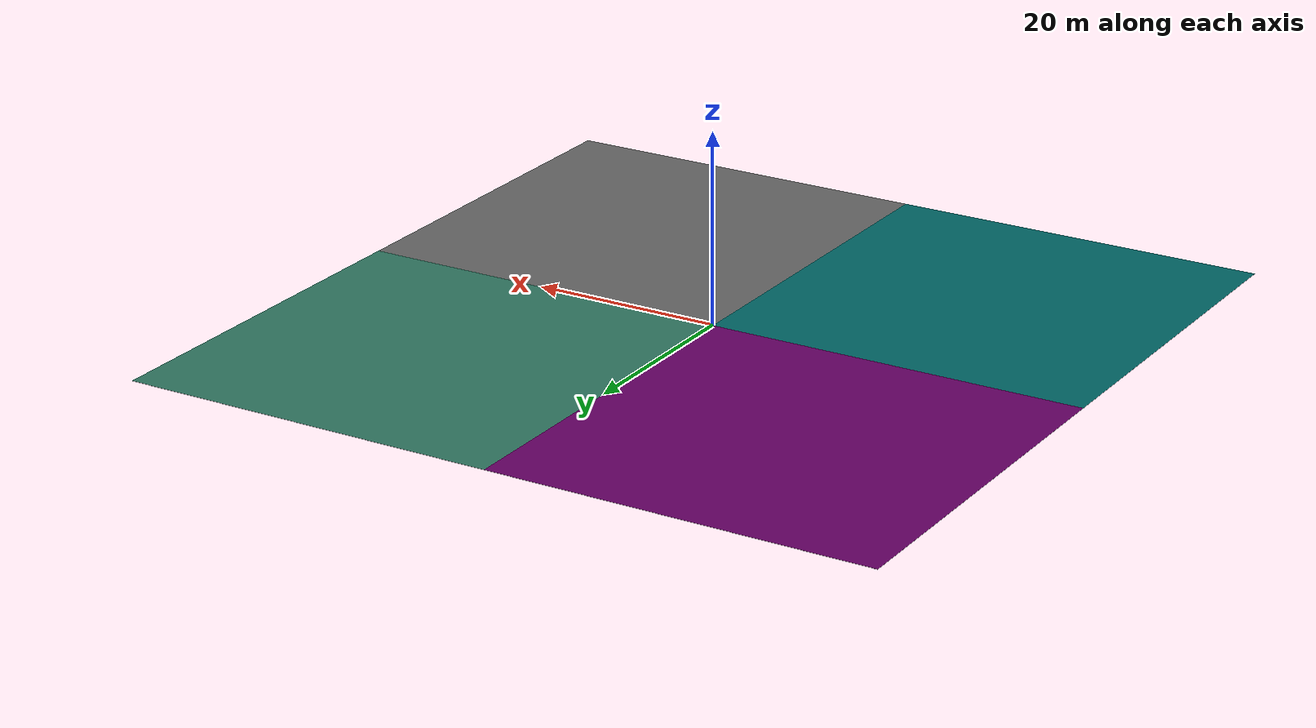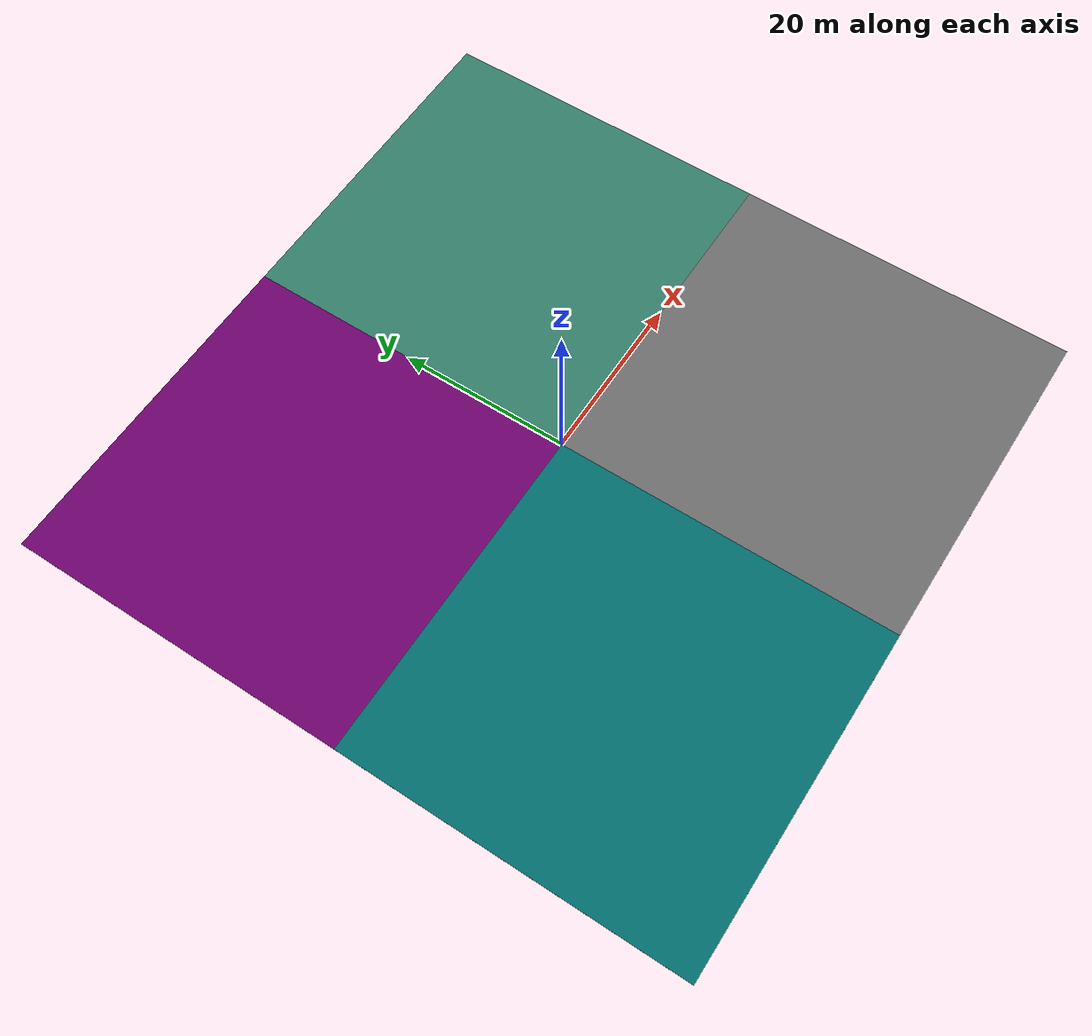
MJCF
<mujoco model="friction_floor_1">
  <compiler angle="radian" />
  <asset>
    <texture name='a' builtin="gradient" height="100" rgb1="1 1 1" rgb2="0 0 0" type="skybox" width="100"/>
    <texture name="texplane0" type="2d" builtin="checker" rgb1="0.14 0.83 0.43" rgb2="0.23 0.09 0.33" width="100" height="100" mark="cross" markrgb=".8 .8 .8"/>
    <texture name="texplane1" type="2d" builtin="checker" rgb1="0 0 0" rgb2="0.8 0.8 0.8" width="100" height="100" mark="cross" markrgb=".8 .8 .8"/>
    <texture name="texplane2" type="2d" builtin="checker" rgb1="0 0 0" rgb2="0.0 0.8 0.8" width="100" height="100" mark="cross" markrgb=".8 .8 .8"/>
    <texture name="texplane3" type="2d" builtin="checker" rgb1="0 0 0" rgb2="0.8 0.0 0.8" width="100" height="100" mark="cross" markrgb=".8 .8 .8"/>
    <material name="matplane0" reflectance="0.2" texture="texplane0" texrepeat="1 1" texuniform="true"/>
    <material name="matplane1" reflectance="0.2" texture="texplane1" texrepeat="1 1" texuniform="true"/>
    <material name="matplane2" reflectance="0.2" texture="texplane2" texrepeat="1 1" texuniform="true"/>
    <material name="matplane3" reflectance="0.2" texture="texplane3" texrepeat="1 1" texuniform="true"/>
  </asset>
  <visual>
    <headlight ambient="0.6 0.6 0.6" diffuse="0.5 0.5 0.5" specular="0.2 0.2 0.2"/>
    <map znear="0.001" />
  </visual>
  <worldbody>
    <!-- Floor XY -->
    <geom contype="1" friction="1 0 0.05" name="floor+5+5" pos="+20 +20 0" euler="0 0 0" size="20 20 0.01" type="box" material="matplane0" condim="6"/>
    <geom contype="1" friction="1 0 0.01" name="floor+5-5" pos="+20 -20 0" euler="0 0 0" size="20 20 0.01" type="box" material="matplane1" condim="6"/>
    <geom contype="1" friction="1 0 0.001" name="floor-5-5" pos="-20 -20 0" euler="0 0 0" size="20 20 0.01" type="box" material="matplane2" condim="6"/>
    <geom contype="1" friction="1 0 0.0001" name="floor-5+5" pos="-20 +20 0" euler="0 0 0" size="20 20 0.01" type="box" material="matplane3" condim="6"/>

  </worldbody>
</mujoco>
